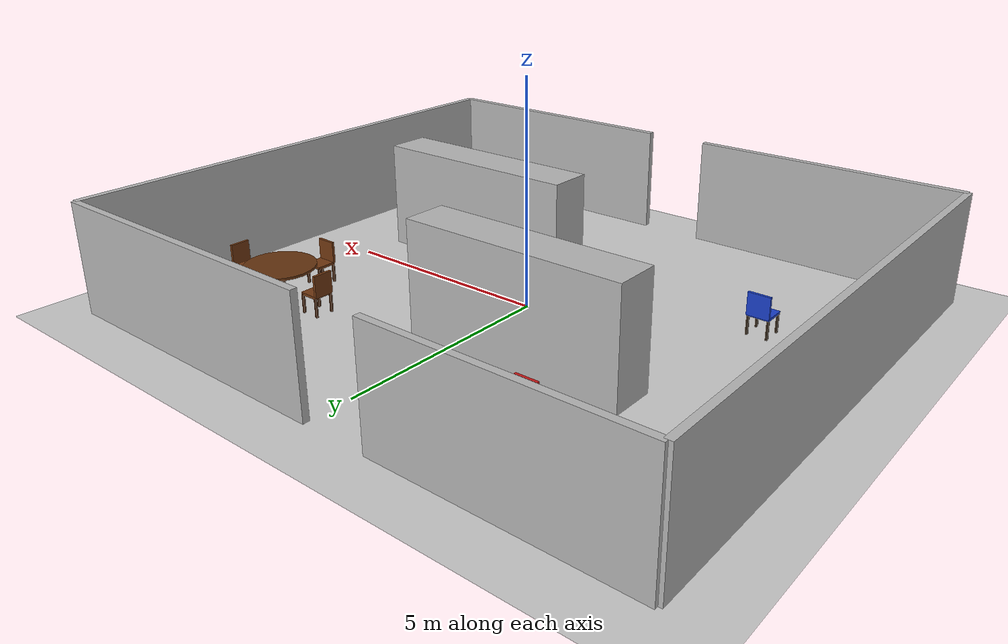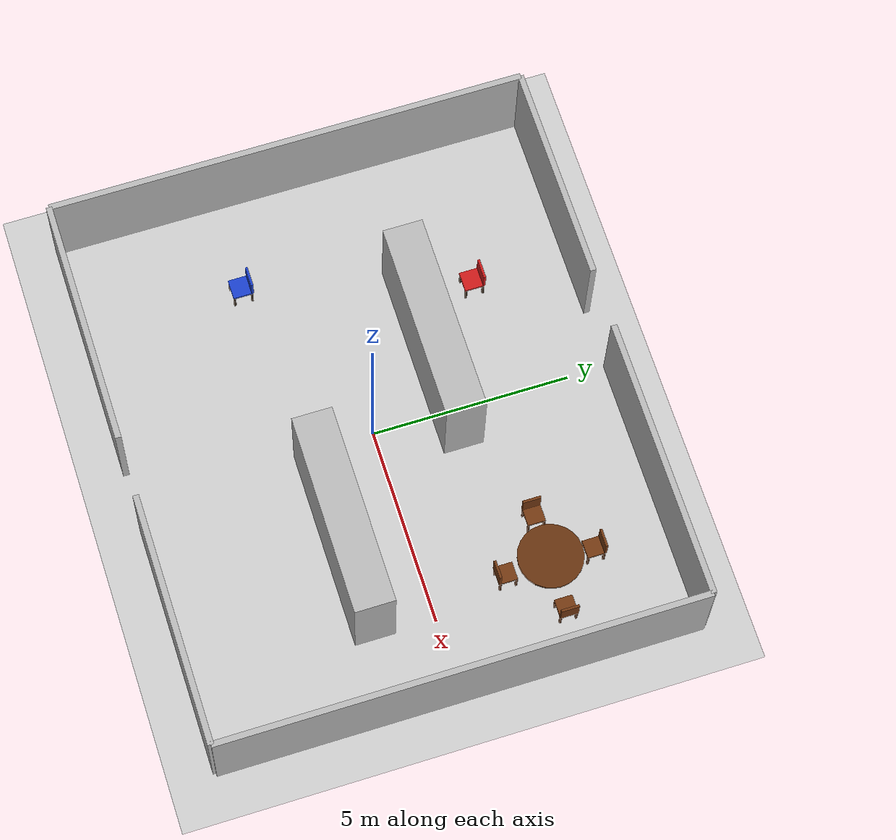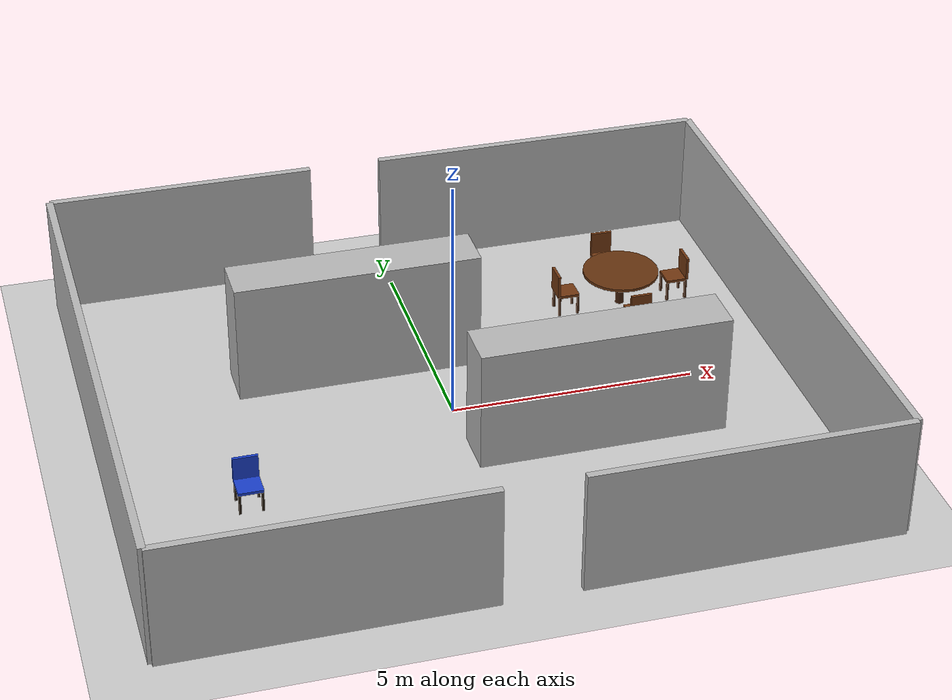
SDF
<?xml version="1.0"?>
<sdf version="1.7">
  <world name="uvc2_room">

    <!-- ========== GAZEBO ROS PLUGINS ========== -->
    <plugin name="gazebo_ros_state" filename="libgazebo_ros_state.so">
      <ros>
        <namespace>/gazebo</namespace>
      </ros>
      <update_rate>10.0</update_rate>
    </plugin>

    <!-- ========== LIGHTING ========== -->
    <light name="sun" type="directional">
      <cast_shadows>0</cast_shadows>
      <pose>0 0 10 0 0 0</pose>
      <diffuse>0.6 0.6 0.6 1</diffuse>
      <specular>0.1 0.1 0.1 1</specular>
      <attenuation>
        <range>1000</range>
        <constant>0.9</constant>
        <linear>0.01</linear>
        <quadratic>0.001</quadratic>
      </attenuation>
      <direction>0 0 -1</direction>
      <spot><inner_angle>0</inner_angle><outer_angle>0</outer_angle><falloff>0</falloff></spot>
    </light>

    <!-- ========== PHYSICS ========== -->
    <gravity>0 0 -9.8</gravity>
    <magnetic_field>6e-06 2.3e-05 -4.2e-05</magnetic_field>
    <atmosphere type="adiabatic"/>
    <physics type="ode">
      <max_step_size>0.001</max_step_size>
      <real_time_factor>1</real_time_factor>
      <real_time_update_rate>1000</real_time_update_rate>
    </physics>

    <!-- ========== SCENE ========== -->
    <scene>
      <ambient>0.4 0.4 0.4 1</ambient>
      <background>0.5 0.5 0.5 1</background>
      <shadows>0</shadows>
    </scene>

    <audio><device>default</device></audio>
    <wind/>
    <spherical_coordinates>
      <surface_model>EARTH_WGS84</surface_model>
      <latitude_deg>0</latitude_deg>
      <longitude_deg>0</longitude_deg>
      <elevation>0</elevation>
      <heading_deg>0</heading_deg>
    </spherical_coordinates>

    <!-- ========== GROUND PLANE ========== -->
    <model name="ground_plane">
      <static>1</static>
      <link name="link">
        <collision name="collision">
          <geometry><plane><normal>0 0 1</normal><size>100 100</size></plane></geometry>
          <surface>
            <friction><ode><mu>100</mu><mu2>50</mu2></ode><torsional><ode/></torsional></friction>
            <contact><ode/></contact>
            <bounce/>
          </surface>
          <max_contacts>10</max_contacts>
        </collision>
        <visual name="visual">
          <cast_shadows>0</cast_shadows>
          <geometry><plane><normal>0 0 1</normal><size>100 100</size></plane></geometry>
          <material>
            <script>
              <uri>file://media/materials/scripts/gazebo.material</uri>
              <n>Gazebo/Grey</n>
            </script>
          </material>
        </visual>
        <self_collide>0</self_collide>
        <enable_wind>0</enable_wind>
        <kinematic>0</kinematic>
      </link>
    </model>

    <!-- ========== ROOM WALLS ========== -->
    <!-- Room: 14m wide (x: -7 to 7), 12m deep (y: -6 to 6), height 2.5m  -->
    <!-- Entry: 1.5m at south-center (x: -0.75 to 0.75), y: -6            -->
    <!-- Exit:  1.5m at north-center-left (x: -1.5 to 0.0), y: 6          -->
    <model name="uvc2_room_walls">
      <static>1</static>
      <pose>0 0 0 0 0 0</pose>

      <!-- South wall left segment: x -7 to -0.75 => length 6.25, center x=-3.875 -->
      <link name="Wall_south_left">
        <collision name="col"><geometry><box><size>6.25 0.15 2.5</size></box></geometry><pose>0 0 1.25 0 0 0</pose><max_contacts>10</max_contacts><surface><contact><ode/></contact><bounce/><friction><torsional><ode/></torsional><ode/></friction></surface></collision>
        <visual name="vis"><pose>0 0 1.25 0 0 0</pose><geometry><box><size>6.25 0.15 2.5</size></box></geometry><material><script><uri>file://media/materials/scripts/gazebo.material</uri><n>Gazebo/Grey</n></script></material></visual>
        <pose>-3.875 -6.0 0 0 0 0</pose>
        <self_collide>0</self_collide><enable_wind>0</enable_wind><kinematic>0</kinematic>
      </link>

      <!-- South wall right segment: x 0.75 to 7 => length 6.25, center x=3.875 -->
      <link name="Wall_south_right">
        <collision name="col"><geometry><box><size>6.25 0.15 2.5</size></box></geometry><pose>0 0 1.25 0 0 0</pose><max_contacts>10</max_contacts><surface><contact><ode/></contact><bounce/><friction><torsional><ode/></torsional><ode/></friction></surface></collision>
        <visual name="vis"><pose>0 0 1.25 0 0 0</pose><geometry><box><size>6.25 0.15 2.5</size></box></geometry><material><script><uri>file://media/materials/scripts/gazebo.material</uri><n>Gazebo/Grey</n></script></material></visual>
        <pose>3.875 -6.0 0 0 0 0</pose>
        <self_collide>0</self_collide><enable_wind>0</enable_wind><kinematic>0</kinematic>
      </link>

      <!-- North wall left segment: x -7 to -1.5 => length 5.5, center x=-4.25 -->
      <link name="Wall_north_left">
        <collision name="col"><geometry><box><size>5.5 0.15 2.5</size></box></geometry><pose>0 0 1.25 0 0 0</pose><max_contacts>10</max_contacts><surface><contact><ode/></contact><bounce/><friction><torsional><ode/></torsional><ode/></friction></surface></collision>
        <visual name="vis"><pose>0 0 1.25 0 0 0</pose><geometry><box><size>5.5 0.15 2.5</size></box></geometry><material><script><uri>file://media/materials/scripts/gazebo.material</uri><n>Gazebo/Grey</n></script></material></visual>
        <pose>-4.25 6.0 0 0 0 0</pose>
        <self_collide>0</self_collide><enable_wind>0</enable_wind><kinematic>0</kinematic>
      </link>

      <!-- North wall right segment: x 0.0 to 7 => length 7.0, center x=3.5 -->
      <link name="Wall_north_right">
        <collision name="col"><geometry><box><size>7.0 0.15 2.5</size></box></geometry><pose>0 0 1.25 0 0 0</pose><max_contacts>10</max_contacts><surface><contact><ode/></contact><bounce/><friction><torsional><ode/></torsional><ode/></friction></surface></collision>
        <visual name="vis"><pose>0 0 1.25 0 0 0</pose><geometry><box><size>7.0 0.15 2.5</size></box></geometry><material><script><uri>file://media/materials/scripts/gazebo.material</uri><n>Gazebo/Grey</n></script></material></visual>
        <pose>3.5 6.0 0 0 0 0</pose>
        <self_collide>0</self_collide><enable_wind>0</enable_wind><kinematic>0</kinematic>
      </link>

      <!-- West wall: full length 12m -->
      <link name="Wall_west">
        <collision name="col"><geometry><box><size>0.15 12.0 2.5</size></box></geometry><pose>0 0 1.25 0 0 0</pose><max_contacts>10</max_contacts><surface><contact><ode/></contact><bounce/><friction><torsional><ode/></torsional><ode/></friction></surface></collision>
        <visual name="vis"><pose>0 0 1.25 0 0 0</pose><geometry><box><size>0.15 12.0 2.5</size></box></geometry><material><script><uri>file://media/materials/scripts/gazebo.material</uri><n>Gazebo/Grey</n></script></material></visual>
        <pose>-7.0 0 0 0 0 0</pose>
        <self_collide>0</self_collide><enable_wind>0</enable_wind><kinematic>0</kinematic>
      </link>

      <!-- East wall: full length 12m -->
      <link name="Wall_east">
        <collision name="col"><geometry><box><size>0.15 12.0 2.5</size></box></geometry><pose>0 0 1.25 0 0 0</pose><max_contacts>10</max_contacts><surface><contact><ode/></contact><bounce/><friction><torsional><ode/></torsional><ode/></friction></surface></collision>
        <visual name="vis"><pose>0 0 1.25 0 0 0</pose><geometry><box><size>0.15 12.0 2.5</size></box></geometry><material><script><uri>file://media/materials/scripts/gazebo.material</uri><n>Gazebo/Grey</n></script></material></visual>
        <pose>7.0 0 0 0 0 0</pose>
        <self_collide>0</self_collide><enable_wind>0</enable_wind><kinematic>0</kinematic>
      </link>

    </model>

    <!-- ========== CORRIDOR 1 (top-left area, wall-height, dark grey) ========== -->
    <!-- Position: center (-1.5, 2.0), size 5.0 x 1.0 x 2.5                     -->
    <model name="corridor_1">
      <static>1</static>
      <pose>-1.5 2.0 0 0 0 0</pose>
      <link name="link">
        <collision name="col"><geometry><box><size>5.0 1.0 2.5</size></box></geometry><pose>0 0 1.25 0 0 0</pose><max_contacts>10</max_contacts><surface><contact><ode/></contact><bounce/><friction><torsional><ode/></torsional><ode/></friction></surface></collision>
        <visual name="vis"><pose>0 0 1.25 0 0 0</pose><geometry><box><size>5.0 1.0 2.5</size></box></geometry><material><script><uri>file://media/materials/scripts/gazebo.material</uri><n>Gazebo/DarkGrey</n></script></material></visual>
        <self_collide>0</self_collide><enable_wind>0</enable_wind><kinematic>0</kinematic>
      </link>
    </model>

    <!-- ========== CORRIDOR 2 (bottom-right area, wall-height, dark grey) ========== -->
    <!-- Position: center (2.5, -1.5), size 5.0 x 1.0 x 2.5                         -->
    <model name="corridor_2">
      <static>1</static>
      <pose>2.5 -1.5 0 0 0 0</pose>
      <link name="link">
        <collision name="col"><geometry><box><size>5.0 1.0 2.5</size></box></geometry><pose>0 0 1.25 0 0 0</pose><max_contacts>10</max_contacts><surface><contact><ode/></contact><bounce/><friction><torsional><ode/></torsional><ode/></friction></surface></collision>
        <visual name="vis"><pose>0 0 1.25 0 0 0</pose><geometry><box><size>5.0 1.0 2.5</size></box></geometry><material><script><uri>file://media/materials/scripts/gazebo.material</uri><n>Gazebo/DarkGrey</n></script></material></visual>
        <self_collide>0</self_collide><enable_wind>0</enable_wind><kinematic>0</kinematic>
      </link>
    </model>

    <!-- ========== CHAIR 1 (bottom-left, BLUE, x=-4.5 y=-2.0) ========== -->
    <model name="chair_1">
      <static>1</static>
      <pose>-4.5 -2.0 0 0 0 0</pose>
      <link name="link">
        <!-- Seat -->
        <visual name="seat_vis"><pose>0 0 0.45 0 0 0</pose><geometry><box><size>0.50 0.50 0.06</size></box></geometry><material><ambient>0.10 0.25 0.80 1</ambient><diffuse>0.10 0.25 0.80 1</diffuse><specular>0.05 0.05 0.15 1</specular></material></visual>
        <collision name="seat_col"><pose>0 0 0.45 0 0 0</pose><geometry><box><size>0.50 0.50 0.06</size></box></geometry><max_contacts>10</max_contacts></collision>
        <!-- Backrest -->
        <visual name="back_vis"><pose>0 0.24 0.70 0 0 0</pose><geometry><box><size>0.50 0.06 0.50</size></box></geometry><material><ambient>0.10 0.25 0.80 1</ambient><diffuse>0.10 0.25 0.80 1</diffuse><specular>0.05 0.05 0.15 1</specular></material></visual>
        <collision name="back_col"><pose>0 0.24 0.70 0 0 0</pose><geometry><box><size>0.50 0.06 0.50</size></box></geometry><max_contacts>10</max_contacts></collision>
        <!-- Legs -->
        <visual name="leg1_vis"><pose>-0.22 -0.22 0.225 0 0 0</pose><geometry><box><size>0.05 0.05 0.45</size></box></geometry><material><ambient>0.15 0.10 0.05 1</ambient><diffuse>0.15 0.10 0.05 1</diffuse></material></visual>
        <collision name="leg1_col"><pose>-0.22 -0.22 0.225 0 0 0</pose><geometry><box><size>0.05 0.05 0.45</size></box></geometry><max_contacts>10</max_contacts></collision>
        <visual name="leg2_vis"><pose>0.22 -0.22 0.225 0 0 0</pose><geometry><box><size>0.05 0.05 0.45</size></box></geometry><material><ambient>0.15 0.10 0.05 1</ambient><diffuse>0.15 0.10 0.05 1</diffuse></material></visual>
        <collision name="leg2_col"><pose>0.22 -0.22 0.225 0 0 0</pose><geometry><box><size>0.05 0.05 0.45</size></box></geometry><max_contacts>10</max_contacts></collision>
        <visual name="leg3_vis"><pose>-0.22 0.22 0.225 0 0 0</pose><geometry><box><size>0.05 0.05 0.45</size></box></geometry><material><ambient>0.15 0.10 0.05 1</ambient><diffuse>0.15 0.10 0.05 1</diffuse></material></visual>
        <collision name="leg3_col"><pose>-0.22 0.22 0.225 0 0 0</pose><geometry><box><size>0.05 0.05 0.45</size></box></geometry><max_contacts>10</max_contacts></collision>
        <visual name="leg4_vis"><pose>0.22 0.22 0.225 0 0 0</pose><geometry><box><size>0.05 0.05 0.45</size></box></geometry><material><ambient>0.15 0.10 0.05 1</ambient><diffuse>0.15 0.10 0.05 1</diffuse></material></visual>
        <collision name="leg4_col"><pose>0.22 0.22 0.225 0 0 0</pose><geometry><box><size>0.05 0.05 0.45</size></box></geometry><max_contacts>10</max_contacts></collision>
        <self_collide>0</self_collide><enable_wind>0</enable_wind><kinematic>0</kinematic>
      </link>
    </model>

    <!-- ========== CHAIR 2 (behind corridor-1, slightly right, RED, x=-3.0 y=3.5) ========== -->
    <model name="chair_2">
      <static>1</static>
      <pose>-3.0 3.5 0 0 0 0</pose>
      <link name="link">
        <!-- Seat -->
        <visual name="seat_vis"><pose>0 0 0.45 0 0 0</pose><geometry><box><size>0.50 0.50 0.06</size></box></geometry><material><ambient>0.80 0.10 0.10 1</ambient><diffuse>0.80 0.10 0.10 1</diffuse><specular>0.15 0.05 0.05 1</specular></material></visual>
        <collision name="seat_col"><pose>0 0 0.45 0 0 0</pose><geometry><box><size>0.50 0.50 0.06</size></box></geometry><max_contacts>10</max_contacts></collision>
        <!-- Backrest -->
        <visual name="back_vis"><pose>0 0.24 0.70 0 0 0</pose><geometry><box><size>0.50 0.06 0.50</size></box></geometry><material><ambient>0.80 0.10 0.10 1</ambient><diffuse>0.80 0.10 0.10 1</diffuse><specular>0.15 0.05 0.05 1</specular></material></visual>
        <collision name="back_col"><pose>0 0.24 0.70 0 0 0</pose><geometry><box><size>0.50 0.06 0.50</size></box></geometry><max_contacts>10</max_contacts></collision>
        <!-- Legs -->
        <visual name="leg1_vis"><pose>-0.22 -0.22 0.225 0 0 0</pose><geometry><box><size>0.05 0.05 0.45</size></box></geometry><material><ambient>0.15 0.10 0.05 1</ambient><diffuse>0.15 0.10 0.05 1</diffuse></material></visual>
        <collision name="leg1_col"><pose>-0.22 -0.22 0.225 0 0 0</pose><geometry><box><size>0.05 0.05 0.45</size></box></geometry><max_contacts>10</max_contacts></collision>
        <visual name="leg2_vis"><pose>0.22 -0.22 0.225 0 0 0</pose><geometry><box><size>0.05 0.05 0.45</size></box></geometry><material><ambient>0.15 0.10 0.05 1</ambient><diffuse>0.15 0.10 0.05 1</diffuse></material></visual>
        <collision name="leg2_col"><pose>0.22 -0.22 0.225 0 0 0</pose><geometry><box><size>0.05 0.05 0.45</size></box></geometry><max_contacts>10</max_contacts></collision>
        <visual name="leg3_vis"><pose>-0.22 0.22 0.225 0 0 0</pose><geometry><box><size>0.05 0.05 0.45</size></box></geometry><material><ambient>0.15 0.10 0.05 1</ambient><diffuse>0.15 0.10 0.05 1</diffuse></material></visual>
        <collision name="leg3_col"><pose>-0.22 0.22 0.225 0 0 0</pose><geometry><box><size>0.05 0.05 0.45</size></box></geometry><max_contacts>10</max_contacts></collision>
        <visual name="leg4_vis"><pose>0.22 0.22 0.225 0 0 0</pose><geometry><box><size>0.05 0.05 0.45</size></box></geometry><material><ambient>0.15 0.10 0.05 1</ambient><diffuse>0.15 0.10 0.05 1</diffuse></material></visual>
        <collision name="leg4_col"><pose>0.22 0.22 0.225 0 0 0</pose><geometry><box><size>0.05 0.05 0.45</size></box></geometry><max_contacts>10</max_contacts></collision>
        <self_collide>0</self_collide><enable_wind>0</enable_wind><kinematic>0</kinematic>
      </link>
    </model>

    <!-- ========== ROUND TABLE (top-right, BROWN, x=4.5 y=3.0) ========== -->
    <model name="round_table">
      <static>1</static>
      <pose>4.5 3.0 0 0 0 0</pose>
      <link name="link">
        <!-- Tabletop (cylinder) -->
        <visual name="top_vis"><pose>0 0 0.75 0 0 0</pose><geometry><cylinder><radius>0.80</radius><length>0.06</length></cylinder></geometry><material><ambient>0.40 0.20 0.06 1</ambient><diffuse>0.40 0.20 0.06 1</diffuse><specular>0.12 0.08 0.03 1</specular></material></visual>
        <collision name="top_col"><pose>0 0 0.75 0 0 0</pose><geometry><cylinder><radius>0.80</radius><length>0.06</length></cylinder></geometry><max_contacts>10</max_contacts></collision>
        <!-- Single center pedestal leg -->
        <visual name="leg_vis"><pose>0 0 0.375 0 0 0</pose><geometry><cylinder><radius>0.09</radius><length>0.75</length></cylinder></geometry><material><ambient>0.25 0.12 0.04 1</ambient><diffuse>0.25 0.12 0.04 1</diffuse></material></visual>
        <collision name="leg_col"><pose>0 0 0.375 0 0 0</pose><geometry><cylinder><radius>0.09</radius><length>0.75</length></cylinder></geometry><max_contacts>10</max_contacts></collision>
        <self_collide>0</self_collide><enable_wind>0</enable_wind><kinematic>0</kinematic>
      </link>
    </model>

    <!-- ========== CHAIR AT ROUND TABLE - LEFT (BROWN, x=3.3 y=3.0, backrest faces right) ========== -->
    <model name="round_table_chair_1">
      <static>1</static>
      <pose>3.3 3.0 0 0 0 0</pose>
      <link name="link">
        <visual name="seat_vis"><pose>0 0 0.45 0 0 0</pose><geometry><box><size>0.45 0.45 0.06</size></box></geometry><material><ambient>0.45 0.22 0.07 1</ambient><diffuse>0.45 0.22 0.07 1</diffuse><specular>0.10 0.06 0.02 1</specular></material></visual>
        <collision name="seat_col"><pose>0 0 0.45 0 0 0</pose><geometry><box><size>0.45 0.45 0.06</size></box></geometry><max_contacts>10</max_contacts></collision>
        <visual name="back_vis"><pose>-0.22 0 0.70 0 0 0</pose><geometry><box><size>0.06 0.45 0.50</size></box></geometry><material><ambient>0.45 0.22 0.07 1</ambient><diffuse>0.45 0.22 0.07 1</diffuse><specular>0.10 0.06 0.02 1</specular></material></visual>
        <collision name="back_col"><pose>-0.22 0 0.70 0 0 0</pose><geometry><box><size>0.06 0.45 0.50</size></box></geometry><max_contacts>10</max_contacts></collision>
        <visual name="leg1_vis"><pose>-0.20 -0.20 0.225 0 0 0</pose><geometry><box><size>0.05 0.05 0.45</size></box></geometry><material><ambient>0.25 0.12 0.04 1</ambient><diffuse>0.25 0.12 0.04 1</diffuse></material></visual>
        <collision name="leg1_col"><pose>-0.20 -0.20 0.225 0 0 0</pose><geometry><box><size>0.05 0.05 0.45</size></box></geometry><max_contacts>10</max_contacts></collision>
        <visual name="leg2_vis"><pose>0.20 -0.20 0.225 0 0 0</pose><geometry><box><size>0.05 0.05 0.45</size></box></geometry><material><ambient>0.25 0.12 0.04 1</ambient><diffuse>0.25 0.12 0.04 1</diffuse></material></visual>
        <collision name="leg2_col"><pose>0.20 -0.20 0.225 0 0 0</pose><geometry><box><size>0.05 0.05 0.45</size></box></geometry><max_contacts>10</max_contacts></collision>
        <visual name="leg3_vis"><pose>-0.20 0.20 0.225 0 0 0</pose><geometry><box><size>0.05 0.05 0.45</size></box></geometry><material><ambient>0.25 0.12 0.04 1</ambient><diffuse>0.25 0.12 0.04 1</diffuse></material></visual>
        <collision name="leg3_col"><pose>-0.20 0.20 0.225 0 0 0</pose><geometry><box><size>0.05 0.05 0.45</size></box></geometry><max_contacts>10</max_contacts></collision>
        <visual name="leg4_vis"><pose>0.20 0.20 0.225 0 0 0</pose><geometry><box><size>0.05 0.05 0.45</size></box></geometry><material><ambient>0.25 0.12 0.04 1</ambient><diffuse>0.25 0.12 0.04 1</diffuse></material></visual>
        <collision name="leg4_col"><pose>0.20 0.20 0.225 0 0 0</pose><geometry><box><size>0.05 0.05 0.45</size></box></geometry><max_contacts>10</max_contacts></collision>
        <self_collide>0</self_collide><enable_wind>0</enable_wind><kinematic>0</kinematic>
      </link>
    </model>

    <!-- ========== CHAIR AT ROUND TABLE - RIGHT (BROWN, x=5.7 y=3.0, backrest faces left) ========== -->
    <model name="round_table_chair_2">
      <static>1</static>
      <pose>5.7 3.0 0 0 0 0</pose>
      <link name="link">
        <visual name="seat_vis"><pose>0 0 0.45 0 0 0</pose><geometry><box><size>0.45 0.45 0.06</size></box></geometry><material><ambient>0.45 0.22 0.07 1</ambient><diffuse>0.45 0.22 0.07 1</diffuse><specular>0.10 0.06 0.02 1</specular></material></visual>
        <collision name="seat_col"><pose>0 0 0.45 0 0 0</pose><geometry><box><size>0.45 0.45 0.06</size></box></geometry><max_contacts>10</max_contacts></collision>
        <visual name="back_vis"><pose>0.22 0 0.70 0 0 0</pose><geometry><box><size>0.06 0.45 0.50</size></box></geometry><material><ambient>0.45 0.22 0.07 1</ambient><diffuse>0.45 0.22 0.07 1</diffuse><specular>0.10 0.06 0.02 1</specular></material></visual>
        <collision name="back_col"><pose>0.22 0 0.70 0 0 0</pose><geometry><box><size>0.06 0.45 0.50</size></box></geometry><max_contacts>10</max_contacts></collision>
        <visual name="leg1_vis"><pose>-0.20 -0.20 0.225 0 0 0</pose><geometry><box><size>0.05 0.05 0.45</size></box></geometry><material><ambient>0.25 0.12 0.04 1</ambient><diffuse>0.25 0.12 0.04 1</diffuse></material></visual>
        <collision name="leg1_col"><pose>-0.20 -0.20 0.225 0 0 0</pose><geometry><box><size>0.05 0.05 0.45</size></box></geometry><max_contacts>10</max_contacts></collision>
        <visual name="leg2_vis"><pose>0.20 -0.20 0.225 0 0 0</pose><geometry><box><size>0.05 0.05 0.45</size></box></geometry><material><ambient>0.25 0.12 0.04 1</ambient><diffuse>0.25 0.12 0.04 1</diffuse></material></visual>
        <collision name="leg2_col"><pose>0.20 -0.20 0.225 0 0 0</pose><geometry><box><size>0.05 0.05 0.45</size></box></geometry><max_contacts>10</max_contacts></collision>
        <visual name="leg3_vis"><pose>-0.20 0.20 0.225 0 0 0</pose><geometry><box><size>0.05 0.05 0.45</size></box></geometry><material><ambient>0.25 0.12 0.04 1</ambient><diffuse>0.25 0.12 0.04 1</diffuse></material></visual>
        <collision name="leg3_col"><pose>-0.20 0.20 0.225 0 0 0</pose><geometry><box><size>0.05 0.05 0.45</size></box></geometry><max_contacts>10</max_contacts></collision>
        <visual name="leg4_vis"><pose>0.20 0.20 0.225 0 0 0</pose><geometry><box><size>0.05 0.05 0.45</size></box></geometry><material><ambient>0.25 0.12 0.04 1</ambient><diffuse>0.25 0.12 0.04 1</diffuse></material></visual>
        <collision name="leg4_col"><pose>0.20 0.20 0.225 0 0 0</pose><geometry><box><size>0.05 0.05 0.45</size></box></geometry><max_contacts>10</max_contacts></collision>
        <self_collide>0</self_collide><enable_wind>0</enable_wind><kinematic>0</kinematic>
      </link>
    </model>

    <!-- ========== CHAIR AT ROUND TABLE - TOP (BROWN, x=4.5 y=4.1, backrest faces south) ========== -->
    <model name="round_table_chair_3">
      <static>1</static>
      <pose>4.5 4.1 0 0 0 0</pose>
      <link name="link">
        <visual name="seat_vis"><pose>0 0 0.45 0 0 0</pose><geometry><box><size>0.45 0.45 0.06</size></box></geometry><material><ambient>0.45 0.22 0.07 1</ambient><diffuse>0.45 0.22 0.07 1</diffuse><specular>0.10 0.06 0.02 1</specular></material></visual>
        <collision name="seat_col"><pose>0 0 0.45 0 0 0</pose><geometry><box><size>0.45 0.45 0.06</size></box></geometry><max_contacts>10</max_contacts></collision>
        <visual name="back_vis"><pose>0 0.22 0.70 0 0 0</pose><geometry><box><size>0.45 0.06 0.50</size></box></geometry><material><ambient>0.45 0.22 0.07 1</ambient><diffuse>0.45 0.22 0.07 1</diffuse><specular>0.10 0.06 0.02 1</specular></material></visual>
        <collision name="back_col"><pose>0 0.22 0.70 0 0 0</pose><geometry><box><size>0.45 0.06 0.50</size></box></geometry><max_contacts>10</max_contacts></collision>
        <visual name="leg1_vis"><pose>-0.20 -0.20 0.225 0 0 0</pose><geometry><box><size>0.05 0.05 0.45</size></box></geometry><material><ambient>0.25 0.12 0.04 1</ambient><diffuse>0.25 0.12 0.04 1</diffuse></material></visual>
        <collision name="leg1_col"><pose>-0.20 -0.20 0.225 0 0 0</pose><geometry><box><size>0.05 0.05 0.45</size></box></geometry><max_contacts>10</max_contacts></collision>
        <visual name="leg2_vis"><pose>0.20 -0.20 0.225 0 0 0</pose><geometry><box><size>0.05 0.05 0.45</size></box></geometry><material><ambient>0.25 0.12 0.04 1</ambient><diffuse>0.25 0.12 0.04 1</diffuse></material></visual>
        <collision name="leg2_col"><pose>0.20 -0.20 0.225 0 0 0</pose><geometry><box><size>0.05 0.05 0.45</size></box></geometry><max_contacts>10</max_contacts></collision>
        <visual name="leg3_vis"><pose>-0.20 0.20 0.225 0 0 0</pose><geometry><box><size>0.05 0.05 0.45</size></box></geometry><material><ambient>0.25 0.12 0.04 1</ambient><diffuse>0.25 0.12 0.04 1</diffuse></material></visual>
        <collision name="leg3_col"><pose>-0.20 0.20 0.225 0 0 0</pose><geometry><box><size>0.05 0.05 0.45</size></box></geometry><max_contacts>10</max_contacts></collision>
        <visual name="leg4_vis"><pose>0.20 0.20 0.225 0 0 0</pose><geometry><box><size>0.05 0.05 0.45</size></box></geometry><material><ambient>0.25 0.12 0.04 1</ambient><diffuse>0.25 0.12 0.04 1</diffuse></material></visual>
        <collision name="leg4_col"><pose>0.20 0.20 0.225 0 0 0</pose><geometry><box><size>0.05 0.05 0.45</size></box></geometry><max_contacts>10</max_contacts></collision>
        <self_collide>0</self_collide><enable_wind>0</enable_wind><kinematic>0</kinematic>
      </link>
    </model>

    <!-- ========== CHAIR AT ROUND TABLE - BOTTOM (BROWN, x=4.5 y=1.9, backrest faces north) ========== -->
    <model name="round_table_chair_4">
      <static>1</static>
      <pose>4.5 1.9 0 0 0 0</pose>
      <link name="link">
        <visual name="seat_vis"><pose>0 0 0.45 0 0 0</pose><geometry><box><size>0.45 0.45 0.06</size></box></geometry><material><ambient>0.45 0.22 0.07 1</ambient><diffuse>0.45 0.22 0.07 1</diffuse><specular>0.10 0.06 0.02 1</specular></material></visual>
        <collision name="seat_col"><pose>0 0 0.45 0 0 0</pose><geometry><box><size>0.45 0.45 0.06</size></box></geometry><max_contacts>10</max_contacts></collision>
        <visual name="back_vis"><pose>0 -0.22 0.70 0 0 0</pose><geometry><box><size>0.45 0.06 0.50</size></box></geometry><material><ambient>0.45 0.22 0.07 1</ambient><diffuse>0.45 0.22 0.07 1</diffuse><specular>0.10 0.06 0.02 1</specular></material></visual>
        <collision name="back_col"><pose>0 -0.22 0.70 0 0 0</pose><geometry><box><size>0.45 0.06 0.50</size></box></geometry><max_contacts>10</max_contacts></collision>
        <visual name="leg1_vis"><pose>-0.20 -0.20 0.225 0 0 0</pose><geometry><box><size>0.05 0.05 0.45</size></box></geometry><material><ambient>0.25 0.12 0.04 1</ambient><diffuse>0.25 0.12 0.04 1</diffuse></material></visual>
        <collision name="leg1_col"><pose>-0.20 -0.20 0.225 0 0 0</pose><geometry><box><size>0.05 0.05 0.45</size></box></geometry><max_contacts>10</max_contacts></collision>
        <visual name="leg2_vis"><pose>0.20 -0.20 0.225 0 0 0</pose><geometry><box><size>0.05 0.05 0.45</size></box></geometry><material><ambient>0.25 0.12 0.04 1</ambient><diffuse>0.25 0.12 0.04 1</diffuse></material></visual>
        <collision name="leg2_col"><pose>0.20 -0.20 0.225 0 0 0</pose><geometry><box><size>0.05 0.05 0.45</size></box></geometry><max_contacts>10</max_contacts></collision>
        <visual name="leg3_vis"><pose>-0.20 0.20 0.225 0 0 0</pose><geometry><box><size>0.05 0.05 0.45</size></box></geometry><material><ambient>0.25 0.12 0.04 1</ambient><diffuse>0.25 0.12 0.04 1</diffuse></material></visual>
        <collision name="leg3_col"><pose>-0.20 0.20 0.225 0 0 0</pose><geometry><box><size>0.05 0.05 0.45</size></box></geometry><max_contacts>10</max_contacts></collision>
        <visual name="leg4_vis"><pose>0.20 0.20 0.225 0 0 0</pose><geometry><box><size>0.05 0.05 0.45</size></box></geometry><material><ambient>0.25 0.12 0.04 1</ambient><diffuse>0.25 0.12 0.04 1</diffuse></material></visual>
        <collision name="leg4_col"><pose>0.20 0.20 0.225 0 0 0</pose><geometry><box><size>0.05 0.05 0.45</size></box></geometry><max_contacts>10</max_contacts></collision>
        <self_collide>0</self_collide><enable_wind>0</enable_wind><kinematic>0</kinematic>
      </link>
    </model>

    <!-- ========== GUI CAMERA ========== -->
    <gui fullscreen="0">
      <camera name="user_camera">
        <pose>0 -18 20 0 0.785 1.5708</pose>
        <view_controller>orbit</view_controller>
        <projection_type>perspective</projection_type>
      </camera>
    </gui>

  </world>
</sdf>
